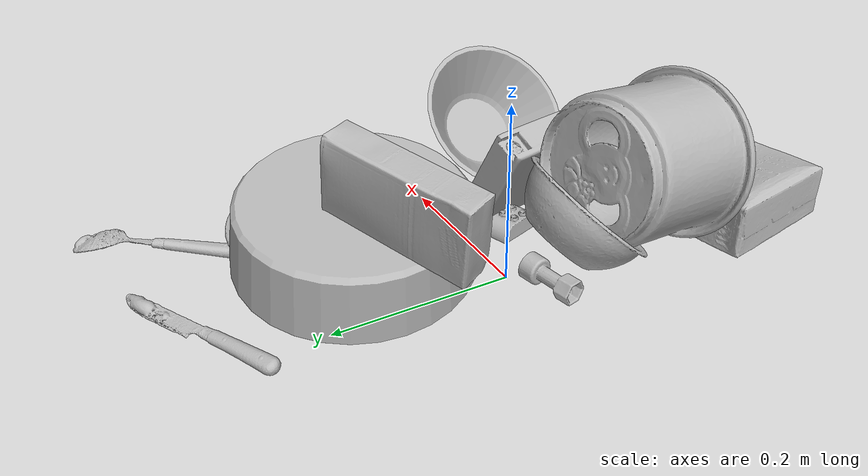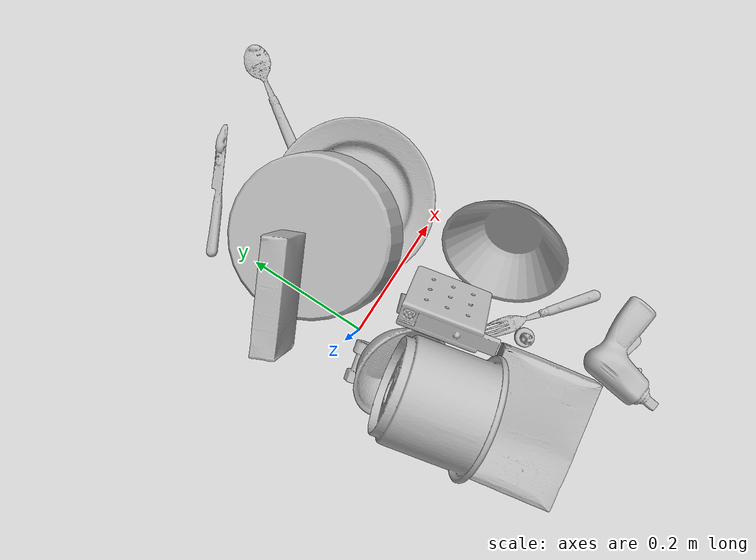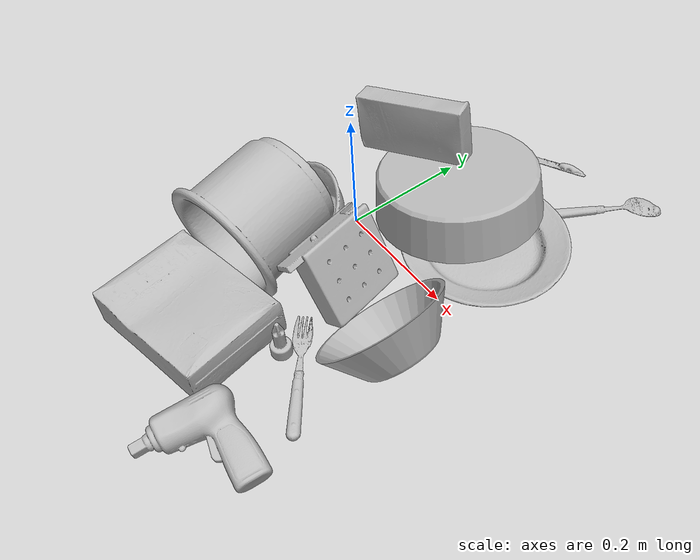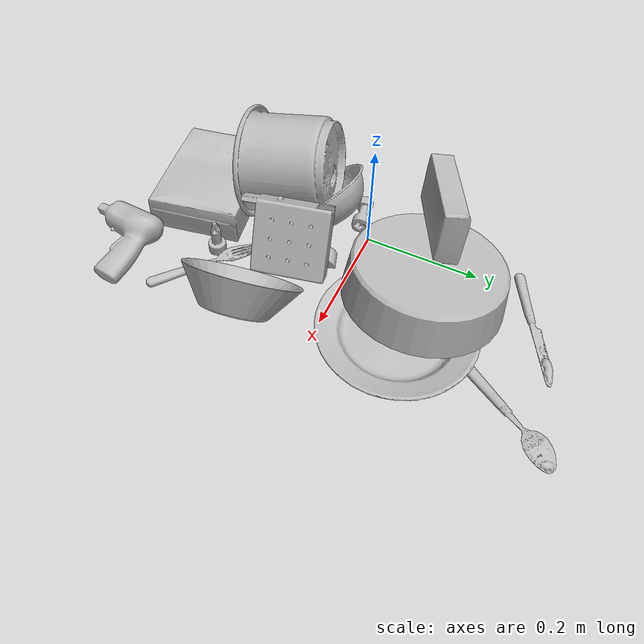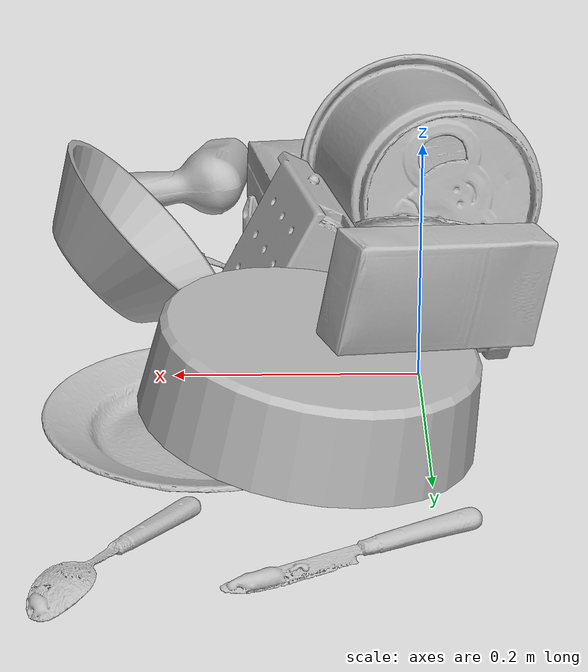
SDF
<sdf version="1.4">
  <world name="default">
    <light name="light1" type="point">
      <pose>0 0 1 0 0 0</pose>
      <diffuse>3 3 3 1</diffuse>
      <specular>3 3 3 1</specular>
    </light>
    <light name="light2" type="point">
      <pose>0 0.5 2 0 0 0</pose>
      <diffuse>1 1 1 1</diffuse>
      <specular>1 1 1 1</specular>
    </light>
    <light name="light3" type="point">
      <pose>0 0.5 2 0 0 0</pose>
      <diffuse>3 3 3 1</diffuse>
      <specular>3 3 3 1</specular>
    </light>
    <scene>
      <ambient>0.7 0.7 0.7</ambient>
    </scene>
    <model name="plate1">
      <link name="link_plate1">
        <collision name="default">
          <geometry>
            <mesh>
              <uri>model://plate/collision_meshes/collision.obj</uri>
              <scale>1.0 1.0 1.0</scale>
            </mesh>
          </geometry>
          <surface>
            <friction>
              <ode>
                <mu>0.5</mu>
                <mu2>0.5</mu2>
              </ode>
            </friction>
          <contact>
        <ode>
            <max_vel>0</max_vel>
            <min_depth>0.0001</min_depth>
            <kp>1e8</kp>
        </ode>
    </contact></surface>
        </collision>
        <visual name="default">
          <geometry>
            <mesh>
              <uri>model://plate/visual_meshes/visual.dae</uri>
              <scale>1.0 1.0 1.0</scale>
            </mesh>
          </geometry>
        </visual>
        <inertial>
          <mass>0.11001742631196976</mass>
          <pose>-0.0006044686888344586 0.000278257648460567 -0.0010561998933553696 0.00221878912528286 -0.0032254756485070152 0.4526088917028743</pose>
          <inertia>
            <ixx>0.00051466376</ixx>
            <iyy>0.0005097412</iyy>
            <izz>0.0010066056</izz>
            <ixy>0</ixy>
            <ixz>0</ixz>
            <iyz>0</iyz>
          </inertia>
        </inertial>
      </link>
      <pose>0.16938163340091705 0.11989477276802063 0.013754877261817455 -0.0002700291947071777 4.624659935190775e-05 -0.07455661595927429</pose>
    </model>
    <model name="plate2">
      <link name="link_plate2">
        <collision name="default">
          <geometry>
            <mesh>
              <uri>model://pan_tefal/collision_meshes/collision.obj</uri>
              <scale>1.0 1.0 1.0</scale>
            </mesh>
          </geometry>
          <surface>
            <friction>
              <ode>
                <mu>0.5</mu>
                <mu2>0.5</mu2>
              </ode>
            </friction>
          <contact>
        <ode>
            <max_vel>0</max_vel>
            <min_depth>0.0001</min_depth>
            <kp>1e8</kp>
        </ode>
    </contact></surface>
        </collision>
        <visual name="default">
          <geometry>
            <mesh>
              <uri>model://pan_tefal/visual_meshes/visual.dae</uri>
              <scale>1.0 1.0 1.0</scale>
            </mesh>
          </geometry>
        </visual>
        <inertial>
          <mass>1.457576870918274</mass>
          <pose>-0.00018002426077146083 3.279360316810198e-05 -0.008514936082065105 0.0008190306735146073 -0.00033013365411173643 -0.33185917339097665</pose>
          <inertia>
            <ixx>0.010061583</ixx>
            <iyy>0.01012645</iyy>
            <izz>0.01852144</izz>
            <ixy>0</ixy>
            <ixz>0</ixz>
            <iyz>0</iyz>
          </inertia>
        </inertial>
      </link>
      <pose>0.08814825117588043 0.13372066617012024 0.05922769755125046 2.989875807871064 -0.06568832043945474 1.0271686651311247</pose>
    </model>
    <model name="bowl1">
      <link name="link_bowl1">
        <collision name="default">
          <geometry>
            <mesh>
              <uri>model://bowl_a/collision_meshes/collision.obj</uri>
              <scale>1.0 1.0 1.0</scale>
            </mesh>
          </geometry>
          <surface>
            <friction>
              <ode>
                <mu>0.5</mu>
                <mu2>0.5</mu2>
              </ode>
            </friction>
          <contact>
        <ode>
            <max_vel>0</max_vel>
            <min_depth>0.0001</min_depth>
            <kp>1e8</kp>
        </ode>
    </contact></surface>
        </collision>
        <visual name="default">
          <geometry>
            <mesh>
              <uri>model://bowl_a/visual_meshes/visual.dae</uri>
              <scale>1.0 1.0 1.0</scale>
            </mesh>
          </geometry>
        </visual>
        <inertial>
          <mass>0.29746556282043457</mass>
          <pose>0.0002786756958812475 4.7311452362919226e-05 -0.0013765294570475817 -0.0009805438325310402 -0.001093816410149737 -0.19123071729823712</pose>
          <inertia>
            <ixx>0.0008468981</ixx>
            <iyy>0.00085209764</iyy>
            <izz>0.0015062407</izz>
            <ixy>0</ixy>
            <ixz>0</ixz>
            <iyz>0</iyz>
          </inertia>
        </inertial>
      </link>
      <pose>0.2445269376039505 -0.11979831010103226 0.0611218586564064 -0.7979660565631542 0.2427276235620323 1.8984947834323</pose>
    </model>
    <model name="bowl2">
      <link name="link_bowl2">
        <collision name="default">
          <geometry>
            <mesh>
              <uri>model://bowl/collision_meshes/collision.obj</uri>
              <scale>1.0 1.0 1.0</scale>
            </mesh>
          </geometry>
          <surface>
            <friction>
              <ode>
                <mu>0.5</mu>
                <mu2>0.5</mu2>
              </ode>
            </friction>
          <contact>
        <ode>
            <max_vel>0</max_vel>
            <min_depth>0.0001</min_depth>
            <kp>1e8</kp>
        </ode>
    </contact></surface>
        </collision>
        <visual name="default">
          <geometry>
            <mesh>
              <uri>model://bowl/visual_meshes/visual.dae</uri>
              <scale>1.0 1.0 1.0</scale>
            </mesh>
          </geometry>
        </visual>
        <inertial>
          <mass>0.12348172068595886</mass>
          <pose>0.0002044529828708619 -0.0010302055161446333 -0.0008042656118050218 -0.01576411854188812 0.014546757923928972 0.7140383762832406</pose>
          <inertia>
            <ixx>0.0002836472</ixx>
            <iyy>0.00027730947</iyy>
            <izz>0.00047719217</izz>
            <ixy>0</ixy>
            <ixz>0</ixz>
            <iyz>0</iyz>
          </inertia>
        </inertial>
      </link>
      <pose>-0.009596404619514942 -0.07791163772344589 0.050878264009952545 -0.7215129399762453 0.11198892605186923 3.073902624021772</pose>
    </model>
    <model name="silverware1">
      <link name="link_silverware1">
        <collision name="default">
          <geometry>
            <mesh>
              <uri>model://spoon/collision_meshes/collision.obj</uri>
              <scale>1.0 1.0 1.0</scale>
            </mesh>
          </geometry>
          <surface>
            <friction>
              <ode>
                <mu>0.5</mu>
                <mu2>0.5</mu2>
              </ode>
            </friction>
          <contact>
        <ode>
            <max_vel>0</max_vel>
            <min_depth>0.0001</min_depth>
            <kp>1e8</kp>
        </ode>
    </contact></surface>
        </collision>
        <visual name="default">
          <geometry>
            <mesh>
              <uri>model://spoon/visual_meshes/visual.dae</uri>
              <scale>1.0 1.0 1.0</scale>
            </mesh>
          </geometry>
        </visual>
        <inertial>
          <mass>0.03284037858247757</mass>
          <pose>-0.005526319611817598 -0.001603417214937508 -0.000727165665011853 0.03521671059584429 -0.039065856285187314 0.0061506144474233635</pose>
          <inertia>
            <ixx>1.8266356e-06</ixx>
            <iyy>0.00012495652</iyy>
            <izz>0.00012585736</izz>
            <ixy>0</ixy>
            <ixz>0</ixz>
            <iyz>0</iyz>
          </inertia>
        </inertial>
      </link>
      <pose>0.23567862808704376 0.3161585330963135 0.010133714415133 3.1049249956050007 -0.06197543503109689 0.979561707099999</pose>
    </model>
    <model name="box1">
      <link name="link_box1">
        <collision name="default">
          <geometry>
            <mesh>
              <uri>model://cracker_box/collision_meshes/collision.obj</uri>
              <scale>1.0 1.0 1.0</scale>
            </mesh>
          </geometry>
          <surface>
            <friction>
              <ode>
                <mu>0.5</mu>
                <mu2>0.5</mu2>
              </ode>
            </friction>
          <contact>
        <ode>
            <max_vel>0</max_vel>
            <min_depth>0.0001</min_depth>
            <kp>1e8</kp>
        </ode>
    </contact></surface>
        </collision>
        <visual name="default">
          <geometry>
            <mesh>
              <uri>model://cracker_box/visual_meshes/visual.dae</uri>
              <scale>1.0 1.0 1.0</scale>
            </mesh>
          </geometry>
        </visual>
        <inertial>
          <mass>2.434305191040039</mass>
          <pose>0.0009464126778766513 0.0002543424488976598 -0.0017029534792527556 -0.0003162073658586955 -0.011106488669321329 0.0025467952332158075</pose>
          <inertia>
            <ixx>0.0061917845</ixx>
            <iyy>0.010223853</iyy>
            <izz>0.014590379</izz>
            <ixy>0</ixy>
            <ixz>0</ixz>
            <iyz>0</iyz>
          </inertia>
        </inertial>
      </link>
      <pose>0.021930592134594917 -0.30075803399086 0.03648177906870842 -0.011771238703470044 -0.007364711316131447 0.18399001281598407</pose>
    </model>
    <model name="box2">
      <link name="link_box2">
        <collision name="default">
          <geometry>
            <mesh>
              <uri>model://sugar_box/collision_meshes/collision.obj</uri>
              <scale>1.0 1.0 1.0</scale>
            </mesh>
          </geometry>
          <surface>
            <friction>
              <ode>
                <mu>0.5</mu>
                <mu2>0.5</mu2>
              </ode>
            </friction>
          <contact>
        <ode>
            <max_vel>0</max_vel>
            <min_depth>0.0001</min_depth>
            <kp>1e8</kp>
        </ode>
    </contact></surface>
        </collision>
        <visual name="default">
          <geometry>
            <mesh>
              <uri>model://sugar_box/visual_meshes/visual.dae</uri>
              <scale>1.0 1.0 1.0</scale>
            </mesh>
          </geometry>
        </visual>
        <inertial>
          <mass>0.5700510144233704</mass>
          <pose>0.0010343727190047503 3.849109634757042e-05 -0.00036364805418998003 -0.00040462615490547663 0.0010506634056045778 0.0026153790218534064</pose>
          <inertia>
            <ixx>0.00047496508</ixx>
            <iyy>0.0015351841</iyy>
            <izz>0.0018377992</izz>
            <ixy>0</ixy>
            <ixz>0</ixz>
            <iyz>0</iyz>
          </inertia>
        </inertial>
      </link>
      <pose>-0.005964572075754404 0.1203325092792511 0.12963347136974335 1.4707185126014215 -0.15252837372446315 0.44578062473862207</pose>
    </model>
    <model name="cup1">
      <link name="link_cup1">
        <collision name="default">
          <geometry>
            <mesh>
              <uri>model://i_cups/collision_meshes/collision.obj</uri>
              <scale>2.0 2.0 2.0</scale>
            </mesh>
          </geometry>
          <surface>
            <friction>
              <ode>
                <mu>0.5</mu>
                <mu2>0.5</mu2>
              </ode>
            </friction>
          <contact>
        <ode>
            <max_vel>0</max_vel>
            <min_depth>0.0001</min_depth>
            <kp>1e8</kp>
        </ode>
    </contact></surface>
        </collision>
        <visual name="default">
          <geometry>
            <mesh>
              <uri>model://i_cups/visual_meshes/visual.dae</uri>
              <scale>2.0 2.0 2.0</scale>
            </mesh>
          </geometry>
        </visual>
        <inertial>
          <mass>0.8749163746833801</mass>
          <pose>0.0002248019736725837 0.0003359491820447147 -0.0017158064292743802 -0.028982988446176382 -0.03987323668700188 -0.3459135059395342</pose>
          <inertia>
            <ixx>0.0048453393</ixx>
            <iyy>0.0048880302</iyy>
            <izz>0.0054154512</izz>
            <ixy>0</ixy>
            <ixz>0</ixz>
            <iyz>0</iyz>
          </inertia>
        </inertial>
      </link>
      <pose>-0.01564091071486473 -0.15377424657344818 0.1075347512960434 1.8416656861721583 -1.003863461718703 -0.033841033108600635</pose>
    </model>
    <model name="silverware2">
      <link name="link_silverware2">
        <collision name="default">
          <geometry>
            <mesh>
              <uri>model://fork/collision_meshes/collision.obj</uri>
              <scale>1.0 1.0 1.0</scale>
            </mesh>
          </geometry>
          <surface>
            <friction>
              <ode>
                <mu>0.5</mu>
                <mu2>0.5</mu2>
              </ode>
            </friction>
          <contact>
        <ode>
            <max_vel>0</max_vel>
            <min_depth>0.0001</min_depth>
            <kp>1e8</kp>
        </ode>
    </contact></surface>
        </collision>
        <visual name="default">
          <geometry>
            <mesh>
              <uri>model://fork/visual_meshes/visual.dae</uri>
              <scale>1.0 1.0 1.0</scale>
            </mesh>
          </geometry>
        </visual>
        <inertial>
          <mass>0.021080315113067627</mass>
          <pose>-0.02957003377377987 0.00046588227269239724 0.0003218860656488687 -0.013550583544297463 -0.010977830979267335 0.014453899239778455</pose>
          <inertia>
            <ixx>7.3898417e-07</ixx>
            <iyy>5.503463e-05</iyy>
            <izz>5.5365177e-05</izz>
            <ixy>0</ixy>
            <ixz>0</ixz>
            <iyz>0</iyz>
          </inertia>
        </inertial>
      </link>
      <pose>0.18297411501407623 -0.23070649802684784 0.00744659872725606 -3.0635007255476565 0.0028360767881861417 2.4755351160802705</pose>
    </model>
    <model name="silverware3">
      <link name="link_silverware3">
        <collision name="default">
          <geometry>
            <mesh>
              <uri>model://knife/collision_meshes/collision.obj</uri>
              <scale>1.0 1.0 1.0</scale>
            </mesh>
          </geometry>
          <surface>
            <friction>
              <ode>
                <mu>0.5</mu>
                <mu2>0.5</mu2>
              </ode>
            </friction>
          <contact>
        <ode>
            <max_vel>0</max_vel>
            <min_depth>0.0001</min_depth>
            <kp>1e8</kp>
        </ode>
    </contact></surface>
        </collision>
        <visual name="default">
          <geometry>
            <mesh>
              <uri>model://knife/visual_meshes/visual.dae</uri>
              <scale>1.0 1.0 1.0</scale>
            </mesh>
          </geometry>
        </visual>
        <inertial>
          <mass>0.03557601198554039</mass>
          <pose>-0.023785259574651718 0.0015275123296305537 5.062016498413868e-05 0.07305791577183936 0.01724842049726123 -0.007409813921982597</pose>
          <inertia>
            <ixx>1.0097915e-06</ixx>
            <iyy>0.00013667726</iyy>
            <izz>0.00013700248</izz>
            <ixy>0</ixy>
            <ixz>0</ixz>
            <iyz>0</iyz>
          </inertia>
        </inertial>
      </link>
      <pose>0.0627366155385971 0.31386643648147583 0.00581071013584733 2.889351655190567 0.025914491540059918 0.48875598026358774</pose>
    </model>
    <model name="toy1">
      <link name="link_toy1">
        <collision name="default">
          <geometry>
            <mesh>
              <uri>model://b_toy_airplane/collision_meshes/collision.obj</uri>
              <scale>1.0 1.0 1.0</scale>
            </mesh>
          </geometry>
          <surface>
            <friction>
              <ode>
                <mu>0.5</mu>
                <mu2>0.5</mu2>
              </ode>
            </friction>
          <contact>
        <ode>
            <max_vel>0</max_vel>
            <min_depth>0.0001</min_depth>
            <kp>1e8</kp>
        </ode>
    </contact></surface>
        </collision>
        <visual name="default">
          <geometry>
            <mesh>
              <uri>model://b_toy_airplane/visual_meshes/visual.dae</uri>
              <scale>1.0 1.0 1.0</scale>
            </mesh>
          </geometry>
        </visual>
        <inertial>
          <mass>0.2131570726633072</mass>
          <pose>0.005081363953649998 0.00401558680459857 0.00954306498169899 -0.040018114912876775 -0.04022188568687408 -0.5601502887595425</pose>
          <inertia>
            <ixx>0.00039573</ixx>
            <iyy>0.00015817716</iyy>
            <izz>0.00049232744</izz>
            <ixy>0</ixy>
            <ixz>0</ixz>
            <iyz>0</iyz>
          </inertia>
        </inertial>
      </link>
      <pose>0.19662992656230927 -0.36799097061157227 0.035689081996679306 3.069570973401641 0.07405944854391493 -1.6903479300640818</pose>
    </model>
    <model name="toy2">
      <link name="link_toy2">
        <collision name="default">
          <geometry>
            <mesh>
              <uri>model://nine_hole_peg_test/collision_meshes/collision.obj</uri>
              <scale>1.0 1.0 1.0</scale>
            </mesh>
          </geometry>
          <surface>
            <friction>
              <ode>
                <mu>0.5</mu>
                <mu2>0.5</mu2>
              </ode>
            </friction>
          <contact>
        <ode>
            <max_vel>0</max_vel>
            <min_depth>0.0001</min_depth>
            <kp>1e8</kp>
        </ode>
    </contact></surface>
        </collision>
        <visual name="default">
          <geometry>
            <mesh>
              <uri>model://nine_hole_peg_test/visual_meshes/visual.dae</uri>
              <scale>1.0 1.0 1.0</scale>
            </mesh>
          </geometry>
        </visual>
        <inertial>
          <mass>0.9403080940246582</mass>
          <pose>-0.004617387894541025 -0.009647617116570473 2.646069333422929e-05 -0.0014666798116952742 0.0007194174694617774 -0.6342424398534297</pose>
          <inertia>
            <ixx>0.0014703267</ixx>
            <iyy>0.0013728285</iyy>
            <izz>0.0025764457</izz>
            <ixy>0</ixy>
            <ixz>0</ixz>
            <iyz>0</iyz>
          </inertia>
        </inertial>
      </link>
      <pose>0.10782746970653534 -0.10534458607435226 0.06902609020471573 -3.851052246135753e-06 -1.0693362044059482 -2.9204965011373587</pose>
    </model>
    <model name="toy3">
      <link name="link_toy3">
        <collision name="default">
          <geometry>
            <mesh>
              <uri>model://a_lego_duplo/collision_meshes/collision.obj</uri>
              <scale>1.0 1.0 1.0</scale>
            </mesh>
          </geometry>
          <surface>
            <friction>
              <ode>
                <mu>0.5</mu>
                <mu2>0.5</mu2>
              </ode>
            </friction>
          <contact>
        <ode>
            <max_vel>0</max_vel>
            <min_depth>0.0001</min_depth>
            <kp>1e8</kp>
        </ode>
    </contact></surface>
        </collision>
        <visual name="default">
          <geometry>
            <mesh>
              <uri>model://a_lego_duplo/visual_meshes/visual.dae</uri>
              <scale>1.0 1.0 1.0</scale>
            </mesh>
          </geometry>
        </visual>
        <inertial>
          <mass>0.023130550980567932</mass>
          <pose>-0.00011337705655023456 0.00018517566786613315 0.00036926098982803524 -0.014116995996849858 -0.00012565876120078728 6.143831699070756e-05</pose>
          <inertia>
            <ixx>2.9655212e-06</ixx>
            <iyy>6.643419e-06</iyy>
            <izz>8.229349e-06</izz>
            <ixy>0</ixy>
            <ixz>0</ixz>
            <iyz>0</iyz>
          </inertia>
        </inertial>
      </link>
      <pose>0.08186545968055725 -0.05943431332707405 0.012111998163163662 1.2084284842660356e-07 1.9326921842612523e-08 1.9013600554733132</pose>
    </model>
    <model name="toy4">
      <link name="link_toy4">
        <collision name="default">
          <geometry>
            <mesh>
              <uri>model://c_toy_airplane/collision_meshes/collision.obj</uri>
              <scale>1.0 1.0 1.0</scale>
            </mesh>
          </geometry>
          <surface>
            <friction>
              <ode>
                <mu>0.5</mu>
                <mu2>0.5</mu2>
              </ode>
            </friction>
          <contact>
        <ode>
            <max_vel>0</max_vel>
            <min_depth>0.0001</min_depth>
            <kp>1e8</kp>
        </ode>
    </contact></surface>
        </collision>
        <visual name="default">
          <geometry>
            <mesh>
              <uri>model://c_toy_airplane/visual_meshes/visual.dae</uri>
              <scale>1.0 1.0 1.0</scale>
            </mesh>
          </geometry>
        </visual>
        <inertial>
          <mass>0.016945533454418182</mass>
          <pose>-0.00023024251277092844 -4.426267139479023e-07 -0.006080526392906904 -0.00619248279943298 -0.01679780513617648 0.7654772671109313</pose>
          <inertia>
            <ixx>7.781044e-06</ixx>
            <iyy>7.759084e-06</iyy>
            <izz>1.826835e-06</izz>
            <ixy>0</ixy>
            <ixz>0</ixz>
            <iyz>0</iyz>
          </inertia>
        </inertial>
      </link>
      <pose>-0.041724175214767456 -0.02819899097084999 0.014875476248562336 1.7321365028713238 -1.309794543087259 -1.495127681916326</pose>
    </model>
    <model name="toy5">
      <link name="link_toy5">
        <collision name="default">
          <geometry>
            <mesh>
              <uri>model://d_toy_airplane/collision_meshes/collision.obj</uri>
              <scale>1.0 1.0 1.0</scale>
            </mesh>
          </geometry>
          <surface>
            <friction>
              <ode>
                <mu>0.5</mu>
                <mu2>0.5</mu2>
              </ode>
            </friction>
          <contact>
        <ode>
            <max_vel>0</max_vel>
            <min_depth>0.0001</min_depth>
            <kp>1e8</kp>
        </ode>
    </contact></surface>
        </collision>
        <visual name="default">
          <geometry>
            <mesh>
              <uri>model://d_toy_airplane/visual_meshes/visual.dae</uri>
              <scale>1.0 1.0 1.0</scale>
            </mesh>
          </geometry>
        </visual>
        <inertial>
          <mass>0.01782749593257904</mass>
          <pose>9.410309576196596e-05 -5.809334834339097e-05 -0.011728094890713692 0.00026697885790152897 0.00467897817044427 0.5194648744438854</pose>
          <inertia>
            <ixx>5.3443378e-06</ixx>
            <iyy>5.3483677e-06</iyy>
            <izz>1.6134899e-06</izz>
            <ixy>0</ixy>
            <ixz>0</ixz>
            <iyz>0</iyz>
          </inertia>
        </inertial>
      </link>
      <pose>0.13579480350017548 -0.22788558900356293 0.03333916515111923 0.0001568393900810667 -4.8917107916982065e-05 2.0777863955989297</pose>
    </model>
  <physics type="ode">
      <max_contacts>50</max_contacts>
      <ode>
        <solver>
          <type>quick</type>
          <iters>75</iters>
        </solver>
        <constraints>
          <contact_max_correcting_vel>0</contact_max_correcting_vel>
          <contact_surface_layer>0</contact_surface_layer>
        </constraints>
      </ode>
    </physics></world>
</sdf>
